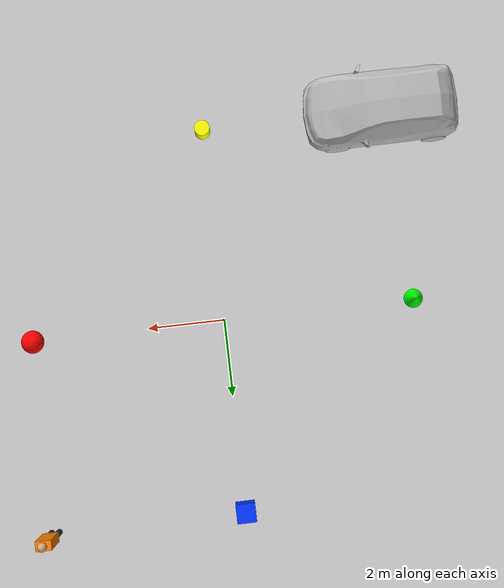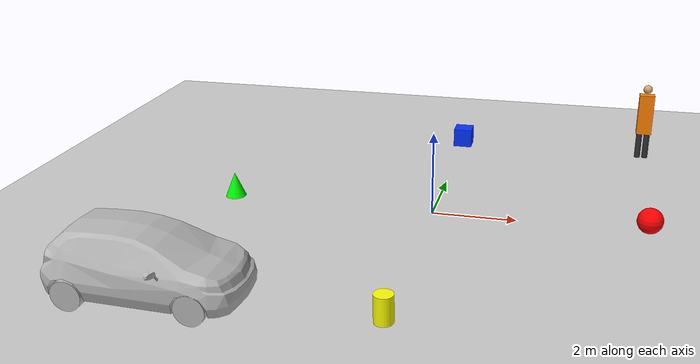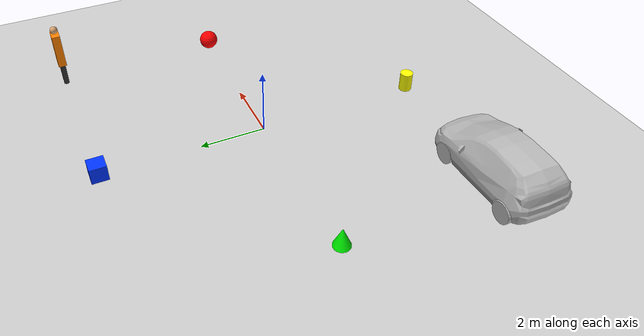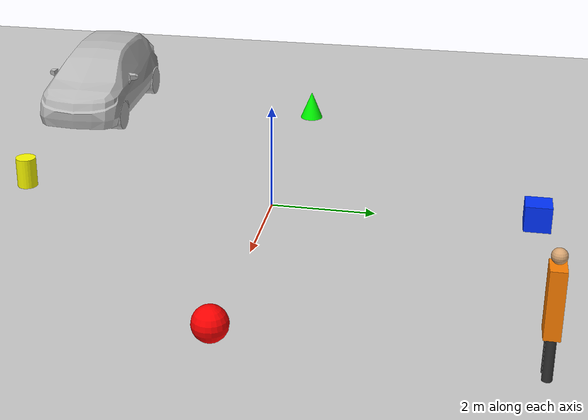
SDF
<?xml version="1.0"?>
<sdf version="1.6">
  <world name="vision_targets">

    <!-- Physics -->
    <physics type="ode">
      <max_step_size>0.004</max_step_size>
      <real_time_factor>1</real_time_factor>
      <real_time_update_rate>250</real_time_update_rate>
    </physics>

    <!-- Sun -->
    <include>
      <uri>model://sun</uri>
    </include>

    <!-- Ground Plane -->
    <include>
      <uri>model://ground_plane</uri>
    </include>

    <!-- ====== TARGET OBJECTS ====== -->

    <!-- Red Sphere — 5m North -->
    <model name="red_sphere">
      <include>
        <uri>model://red_sphere</uri>
      </include>
      <pose>5 0 0.3 0 0 0</pose>
    </model>

    <!-- Blue Cube — 5m East -->
    <model name="blue_cube">
      <include>
        <uri>model://blue_cube</uri>
      </include>
      <pose>0 5 0.25 0 0 0</pose>
    </model>

    <!-- Green Cone — 5m South -->
    <model name="green_cone">
      <include>
        <uri>model://green_cone</uri>
      </include>
      <pose>-5 0 0.3 0 0 0</pose>
    </model>

    <!-- Yellow Cylinder — 5m West -->
    <model name="yellow_cylinder">
      <include>
        <uri>model://yellow_cylinder</uri>
      </include>
      <pose>0 -5 0.3 0 0 0</pose>
    </model>

    <!-- Person Standing — 5m NE -->
    <model name="person_standing">
      <include>
        <uri>model://person_standing</uri>
      </include>
      <pose>5 5 0.7 0 0 0</pose>
    </model>

    <!-- Car — 5m SW -->
    <model name="car">
      <include>
        <uri>model://car</uri>
      </include>
      <pose>-5 -5 0.0 0 0 0</pose>
    </model>

  </world>
</sdf>

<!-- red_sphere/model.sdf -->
<sdf version="1.6">
  <model name="red_sphere">
    <static>true</static>
    <link name="link">
      <inertial>
        <mass>1.0</mass>
        <inertia>
          <ixx>0.036</ixx><iyy>0.036</iyy><izz>0.036</izz>
          <ixy>0</ixy><ixz>0</ixz><iyz>0</iyz>
        </inertia>
      </inertial>
      <collision name="collision">
        <geometry>
          <sphere><radius>0.3</radius></sphere>
        </geometry>
      </collision>
      <visual name="visual">
        <geometry>
          <sphere><radius>0.3</radius></sphere>
        </geometry>
        <material>
          <ambient>1 0 0 1</ambient>
          <diffuse>1 0 0 1</diffuse>
          <specular>0.5 0 0 1</specular>
        </material>
      </visual>
    </link>
  </model>
</sdf>

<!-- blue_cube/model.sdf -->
<sdf version="1.6">
  <model name="blue_cube">
    <static>true</static>
    <link name="link">
      <inertial>
        <mass>1.0</mass>
        <inertia>
          <ixx>0.042</ixx><iyy>0.042</iyy><izz>0.042</izz>
          <ixy>0</ixy><ixz>0</ixz><iyz>0</iyz>
        </inertia>
      </inertial>
      <collision name="collision">
        <geometry>
          <box><size>0.5 0.5 0.5</size></box>
        </geometry>
      </collision>
      <visual name="visual">
        <geometry>
          <box><size>0.5 0.5 0.5</size></box>
        </geometry>
        <material>
          <ambient>0 0 1 1</ambient>
          <diffuse>0 0.2 1 1</diffuse>
          <specular>0 0 0.5 1</specular>
        </material>
      </visual>
    </link>
  </model>
</sdf>

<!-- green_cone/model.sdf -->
<sdf version="1.6">
  <model name="green_cone">
    <static>true</static>
    <link name="link">
      <inertial>
        <mass>0.8</mass>
        <inertia>
          <ixx>0.063</ixx><iyy>0.063</iyy><izz>0.063</izz>
          <ixy>0</ixy><ixz>0</ixz><iyz>0</iyz>
        </inertia>
      </inertial>
      <collision name="collision">
        <geometry>
          <mesh>
            <uri>model://green_cone/meshes/cone.obj</uri>
          </mesh>
        </geometry>
      </collision>
      <visual name="visual">
        <geometry>
          <mesh>
            <uri>model://green_cone/meshes/cone.obj</uri>
          </mesh>
        </geometry>
        <material>
          <ambient>0 0.8 0 1</ambient>
          <diffuse>0 1 0 1</diffuse>
          <specular>0 0.3 0 1</specular>
        </material>
      </visual>
    </link>
  </model>
</sdf>

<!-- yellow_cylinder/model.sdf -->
<sdf version="1.6">
  <model name="yellow_cylinder">
    <static>true</static>
    <link name="link">
      <inertial>
        <mass>0.8</mass>
        <inertia>
          <ixx>0.03</ixx><iyy>0.03</iyy><izz>0.01</izz>
          <ixy>0</ixy><ixz>0</ixz><iyz>0</iyz>
        </inertia>
      </inertial>
      <collision name="collision">
        <geometry>
          <cylinder><radius>0.2</radius><length>0.6</length></cylinder>
        </geometry>
      </collision>
      <visual name="visual">
        <geometry>
          <cylinder><radius>0.2</radius><length>0.6</length></cylinder>
        </geometry>
        <material>
          <ambient>1 1 0 1</ambient>
          <diffuse>1 1 0 1</diffuse>
          <specular>0.5 0.5 0 1</specular>
        </material>
      </visual>
    </link>
  </model>
</sdf>

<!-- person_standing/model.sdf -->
<sdf version="1.6">
  <model name="person_standing">
    <static>true</static>
    <link name="torso">
      <pose>0 0 0.55 0 0 0</pose>
      <inertial>
        <mass>5.0</mass>
        <inertia>
          <ixx>0.5</ixx><iyy>0.5</iyy><izz>0.1</izz>
          <ixy>0</ixy><ixz>0</ixz><iyz>0</iyz>
        </inertia>
      </inertial>
      <collision name="torso_collision">
        <geometry>
          <box><size>0.4 0.25 1.1</size></box>
        </geometry>
      </collision>
      <visual name="torso_visual">
        <geometry>
          <box><size>0.4 0.25 1.1</size></box>
        </geometry>
        <material>
          <ambient>1.0 0.5 0.0 1</ambient>
          <diffuse>1.0 0.5 0.0 1</diffuse>
        </material>
      </visual>
    </link>
    <link name="head">
      <pose>0 0 1.25 0 0 0</pose>
      <inertial>
        <mass>1.0</mass>
        <inertia>
          <ixx>0.004</ixx><iyy>0.004</iyy><izz>0.004</izz>
          <ixy>0</ixy><ixz>0</ixz><iyz>0</iyz>
        </inertia>
      </inertial>
      <collision name="head_collision">
        <geometry>
          <sphere><radius>0.12</radius></sphere>
        </geometry>
      </collision>
      <visual name="head_visual">
        <geometry>
          <sphere><radius>0.12</radius></sphere>
        </geometry>
        <material>
          <ambient>0.85 0.65 0.45 1</ambient>
          <diffuse>0.85 0.65 0.45 1</diffuse>
        </material>
      </visual>
    </link>
    <link name="left_leg">
      <pose>0.1 0 -0.35 0 0 0</pose>
      <inertial>
        <mass>2.0</mass>
        <inertia>
          <ixx>0.06</ixx><iyy>0.06</iyy><izz>0.005</izz>
          <ixy>0</ixy><ixz>0</ixz><iyz>0</iyz>
        </inertia>
      </inertial>
      <collision name="left_leg_collision">
        <geometry>
          <cylinder><radius>0.08</radius><length>0.7</length></cylinder>
        </geometry>
      </collision>
      <visual name="left_leg_visual">
        <geometry>
          <cylinder><radius>0.08</radius><length>0.7</length></cylinder>
        </geometry>
        <material>
          <ambient>0.2 0.2 0.2 1</ambient>
          <diffuse>0.2 0.2 0.2 1</diffuse>
        </material>
      </visual>
    </link>
    <link name="right_leg">
      <pose>-0.1 0 -0.35 0 0 0</pose>
      <inertial>
        <mass>2.0</mass>
        <inertia>
          <ixx>0.06</ixx><iyy>0.06</iyy><izz>0.005</izz>
          <ixy>0</ixy><ixz>0</ixz><iyz>0</iyz>
        </inertia>
      </inertial>
      <collision name="right_leg_collision">
        <geometry>
          <cylinder><radius>0.08</radius><length>0.7</length></cylinder>
        </geometry>
      </collision>
      <visual name="right_leg_visual">
        <geometry>
          <cylinder><radius>0.08</radius><length>0.7</length></cylinder>
        </geometry>
        <material>
          <ambient>0.2 0.2 0.2 1</ambient>
          <diffuse>0.2 0.2 0.2 1</diffuse>
        </material>
      </visual>
    </link>
    <joint name="head_joint" type="fixed">
      <parent>torso</parent>
      <child>head</child>
    </joint>
    <joint name="left_leg_joint" type="fixed">
      <parent>torso</parent>
      <child>left_leg</child>
    </joint>
    <joint name="right_leg_joint" type="fixed">
      <parent>torso</parent>
      <child>right_leg</child>
    </joint>
  </model>
</sdf>

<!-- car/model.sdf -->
<sdf version="1.6">
  <model name="car">
    <static>true</static>
    <link name="link">
      <collision name="collision">
        <pose>0 0 0 0 0 1.57079632679</pose>
        <geometry>
          <mesh>
            <scale>0.0254 0.0254 0.0254</scale>
            <uri>model://car/meshes/car.obj</uri>
          </mesh>
        </geometry>
      </collision>
      <visual name="visual">
        <pose>0 0 0 0 0 1.57079632679</pose>
        <geometry>
          <mesh>
            <scale>0.0254 0.0254 0.0254</scale>
            <uri>model://car/meshes/car.obj</uri>
          </mesh>
        </geometry>
      </visual>
    </link>
  </model>
</sdf>
